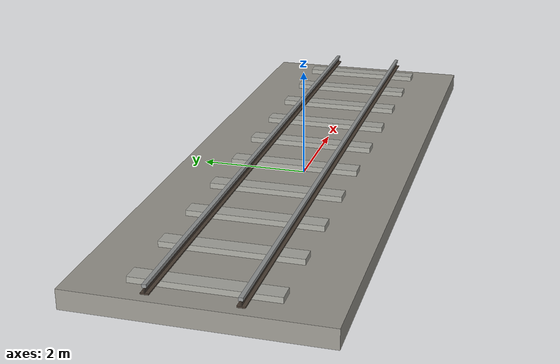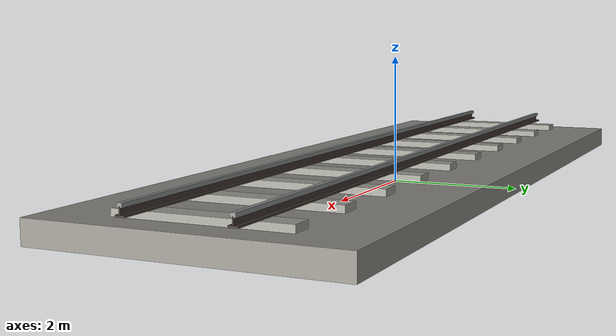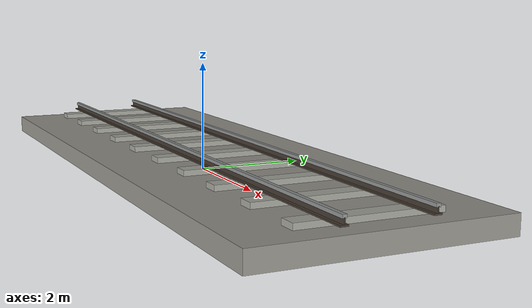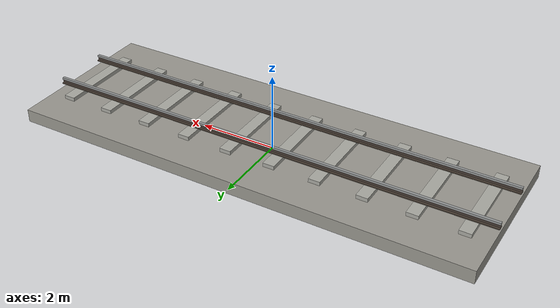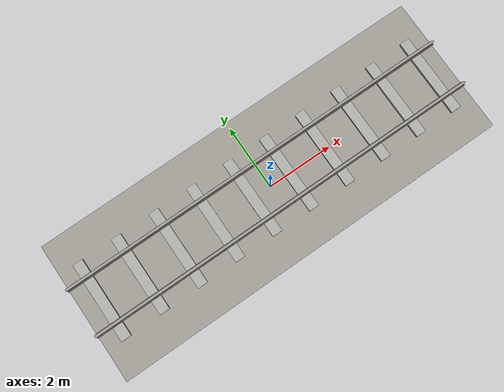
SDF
<?xml version="1.0"?>
<sdf version="1.9">
  <model name="track_12m_gui">
    <static>true</static>
    <link name="preview_track">
      <visual name="sleeper_00"><pose>-5.400 0 0.350 0 0 0</pose><geometry><box><size>0.30 2.40 0.18</size></box></geometry><material><diffuse>0.66 0.66 0.63 1</diffuse><pbr><metal><roughness>0.92</roughness><metalness>0</metalness></metal></pbr></material></visual>
      <visual name="sleeper_01"><pose>-4.200 0 0.350 0 0 0</pose><geometry><box><size>0.30 2.40 0.18</size></box></geometry><material><diffuse>0.66 0.66 0.63 1</diffuse><pbr><metal><roughness>0.92</roughness><metalness>0</metalness></metal></pbr></material></visual>
      <visual name="sleeper_02"><pose>-3.000 0 0.350 0 0 0</pose><geometry><box><size>0.30 2.40 0.18</size></box></geometry><material><diffuse>0.66 0.66 0.63 1</diffuse><pbr><metal><roughness>0.92</roughness><metalness>0</metalness></metal></pbr></material></visual>
      <visual name="sleeper_03"><pose>-1.800 0 0.350 0 0 0</pose><geometry><box><size>0.30 2.40 0.18</size></box></geometry><material><diffuse>0.66 0.66 0.63 1</diffuse><pbr><metal><roughness>0.92</roughness><metalness>0</metalness></metal></pbr></material></visual>
      <visual name="sleeper_04"><pose>-0.600 0 0.350 0 0 0</pose><geometry><box><size>0.30 2.40 0.18</size></box></geometry><material><diffuse>0.66 0.66 0.63 1</diffuse><pbr><metal><roughness>0.92</roughness><metalness>0</metalness></metal></pbr></material></visual>
      <visual name="sleeper_05"><pose>0.600 0 0.350 0 0 0</pose><geometry><box><size>0.30 2.40 0.18</size></box></geometry><material><diffuse>0.66 0.66 0.63 1</diffuse><pbr><metal><roughness>0.92</roughness><metalness>0</metalness></metal></pbr></material></visual>
      <visual name="sleeper_06"><pose>1.800 0 0.350 0 0 0</pose><geometry><box><size>0.30 2.40 0.18</size></box></geometry><material><diffuse>0.66 0.66 0.63 1</diffuse><pbr><metal><roughness>0.92</roughness><metalness>0</metalness></metal></pbr></material></visual>
      <visual name="sleeper_07"><pose>3.000 0 0.350 0 0 0</pose><geometry><box><size>0.30 2.40 0.18</size></box></geometry><material><diffuse>0.66 0.66 0.63 1</diffuse><pbr><metal><roughness>0.92</roughness><metalness>0</metalness></metal></pbr></material></visual>
      <visual name="sleeper_08"><pose>4.200 0 0.350 0 0 0</pose><geometry><box><size>0.30 2.40 0.18</size></box></geometry><material><diffuse>0.66 0.66 0.63 1</diffuse><pbr><metal><roughness>0.92</roughness><metalness>0</metalness></metal></pbr></material></visual>
      <visual name="sleeper_09"><pose>5.400 0 0.350 0 0 0</pose><geometry><box><size>0.30 2.40 0.18</size></box></geometry><material><diffuse>0.66 0.66 0.63 1</diffuse><pbr><metal><roughness>0.92</roughness><metalness>0</metalness></metal></pbr></material></visual>
      <visual name="ballast"><pose>0 0 0.17 0 0 0</pose><geometry><box><size>12 4.25 0.34</size></box></geometry><material><diffuse>0.60 0.59 0.56 1</diffuse><pbr><metal><albedo_map>model://track_12m/materials/textures/ballast_albedo.png</albedo_map><roughness>0.98</roughness><metalness>0</metalness></metal></pbr></material></visual>
      <visual name="rail_l_foot"><pose>0 0.7175 0.460 0 0 0</pose><geometry><box><size>12 0.132 0.024</size></box></geometry><material><diffuse>0.30 0.25 0.21 1</diffuse></material></visual>
      <visual name="rail_l_web"><pose>0 0.7175 0.520 0 0 0</pose><geometry><box><size>12 0.018 0.096</size></box></geometry><material><diffuse>0.27 0.23 0.20 1</diffuse></material></visual>
      <visual name="rail_l_head"><pose>0 0.7175 0.584 0 0 0</pose><geometry><box><size>12 0.070 0.056</size></box></geometry><material><diffuse>0.58 0.59 0.59 1</diffuse><specular>0.75 0.75 0.75 1</specular></material></visual>
      <visual name="rail_r_foot"><pose>0 -0.7175 0.460 0 0 0</pose><geometry><box><size>12 0.132 0.024</size></box></geometry><material><diffuse>0.30 0.25 0.21 1</diffuse></material></visual>
      <visual name="rail_r_web"><pose>0 -0.7175 0.520 0 0 0</pose><geometry><box><size>12 0.018 0.096</size></box></geometry><material><diffuse>0.27 0.23 0.20 1</diffuse></material></visual>
      <visual name="rail_r_head"><pose>0 -0.7175 0.584 0 0 0</pose><geometry><box><size>12 0.070 0.056</size></box></geometry><material><diffuse>0.58 0.59 0.59 1</diffuse><specular>0.75 0.75 0.75 1</specular></material></visual>
    </link>
  </model>
</sdf>
